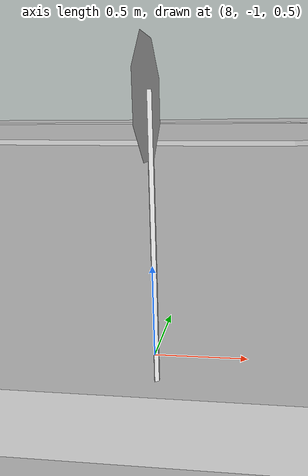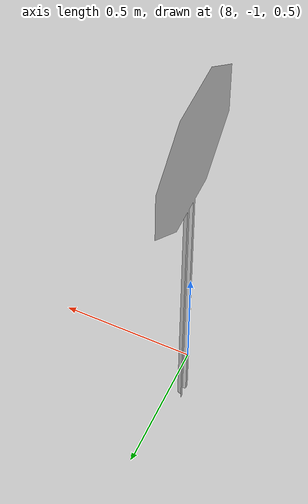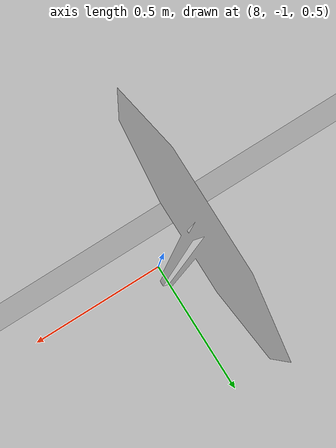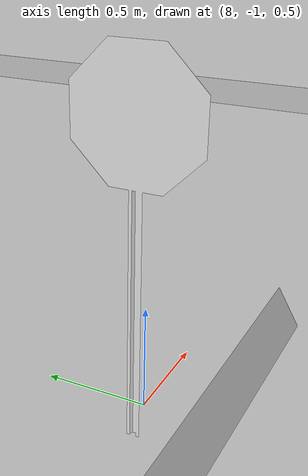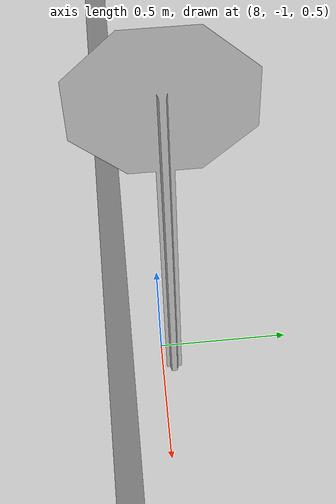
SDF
<sdf version="1.6">
 <world name="default">
  <light name="sun" type="directional">
   <pose>0 0 10 0 -0 0</pose>
   <diffuse>0.8 0.8 0.8 1</diffuse>
   <specular>0.2 0.2 0.2 1</specular>
   <attenuation>
    <range>1000</range>
    <constant>0.9</constant>
    <linear>0.01</linear>
    <quadratic>0.001</quadratic>
   </attenuation>
   <direction>-0.5 0.1 -0.9</direction>
  </light>
  <model name="cafe">
   <pose>0.178485 0.205231 0 0 -0 0</pose>
   <static>1</static>
   <link name="link">
    <collision name="collision">
     <geometry><mesh><scale>0.254 0.254 0.254</scale><uri>model://mcity/meshes/mcity.obj</uri></mesh></geometry>
    </collision>
    <visual name="visual">
     <geometry><mesh><scale>0.254 0.254 0.254</scale><uri>model://mcity/meshes/mcity.obj</uri></mesh></geometry>
    </visual>
   </link>
  </model>
  <gravity>0 0 -9.8</gravity>
  <magnetic_field>6e-06 2.3e-05 -4.2e-05</magnetic_field>
  <atmosphere type="adiabatic"/>
  <physics name="default_physics" default="0" type="ode">
   <max_step_size>0.001</max_step_size>
   <real_time_factor>1</real_time_factor>
   <real_time_update_rate>1000</real_time_update_rate>
  </physics>
  <scene><ambient>0.4 0.4 0.4 1</ambient><background>0.7 0.7 0.7 1</background><shadows>1</shadows></scene>
  <audio><device>default</device></audio>
  <spherical_coordinates>
   <surface_model>EARTH_WGS84</surface_model>
   <latitude_deg>0</latitude_deg>
   <longitude_deg>0</longitude_deg>
   <elevation>0</elevation>
   <heading_deg>0</heading_deg>
  </spherical_coordinates>
  <model name="Stop Sign">
   <static>1</static>
   <link name="link">
    <collision name="collision">
     <geometry><mesh><uri>model://stop_sign/meshes/stop_sign.dae</uri></mesh></geometry>
    </collision>
    <visual name="visual">
     <geometry><mesh><uri>model://stop_sign/meshes/stop_sign.dae</uri></mesh></geometry>
     <material>
      <script>
       <uri>model://stop_sign/materials/scripts</uri>
       <uri>model://stop_sign/materials/textures</uri>
       <name>StopSign/Diffuse</name>
      </script>
     </material>
    </visual>
   </link>
   <pose>8 -0.95 0.31 0 0 -1.5707</pose>
  </model>
 </world>
</sdf>
